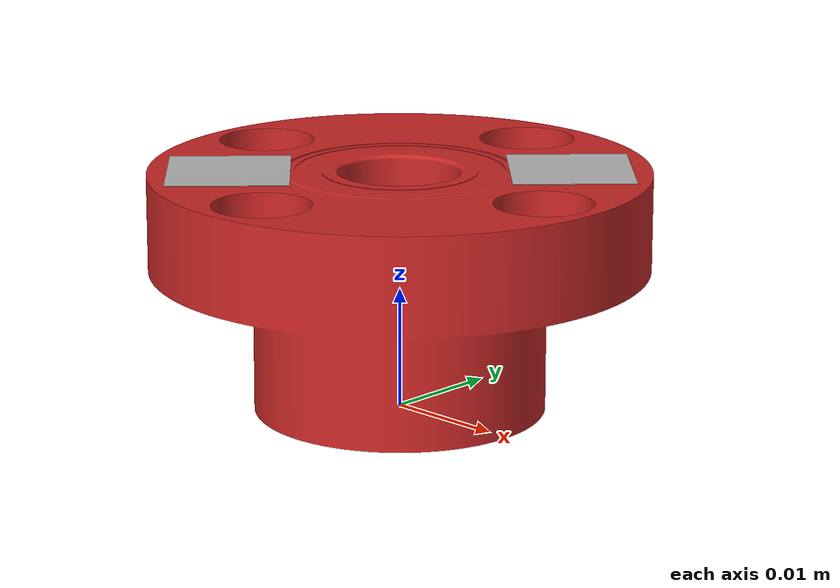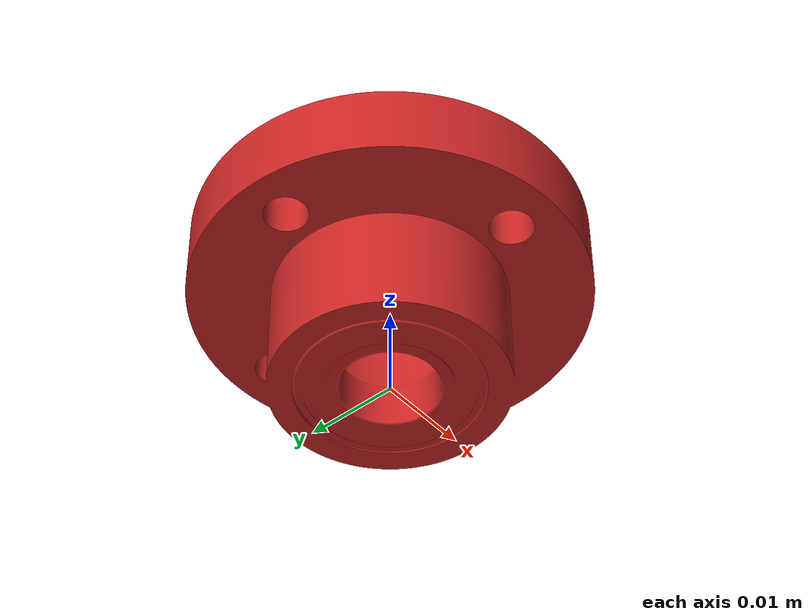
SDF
<?xml version="1.0"?>
<sdf version='1.7'>
  <model name='part_aruco'>

    <link name='part_link'>
      <inertial>
        <pose>0 0 0 0 -0 0</pose>
        <mass>1</mass>
        <inertia>
          <ixx>0.01</ixx>
          <ixy>0</ixy>
          <ixz>0</ixz>
          <iyy>0.01</iyy>
          <iyz>0</iyz>
          <izz>0.01</izz>
        </inertia>
      </inertial>
      <collision name='part_link_collision'>
        <pose>0 0 0 0 -0 0</pose>
        <geometry>
          <mesh>
            <uri>model://part_aruco/meshes/part.stl</uri>
          </mesh>
        </geometry>
      </collision>
      <visual name='box_link_visual'>
        <pose>0 0 0 0 -0 0</pose>
        <geometry>
          <mesh>
            <uri>model://part_aruco/meshes/part.stl</uri>
          </mesh>
        </geometry>
        <material>
          <script>
            <name>Gazebo/Red</name>
            <uri>file://media/materials/scripts/gazebo.material</uri>
          </script>
        </material>
      </visual>

      <!-- ArUco Marker 1 -->
      <visual name='aruco_marker_1_visual'>
        <pose>0.0098 0.0098 0.02 0 0 0.785</pose>
        <geometry>
          <box>
            <size>0.010 0.010 0.0001</size>
          </box>
        </geometry>
        <material>
          <script>
            <uri>model://box_with_aruco/materials/scripts</uri>
            <uri>model://box_with_aruco/materials/textures</uri>
            <name>Marker1</name>
          </script>
        </material>
      </visual>

      <!-- ArUco Marker 2 -->
      <visual name='aruco_marker_2_visual'>
        <pose>-0.0098 -0.0098 0.02 0 0 0.785</pose>
        <geometry>
          <box>
            <size>0.010 0.010 0.0001</size>
          </box>
        </geometry>
        <material>
          <script>
            <uri>model://box_with_aruco/materials/scripts</uri>
            <uri>model://box_with_aruco/materials/textures</uri>
            <name>Marker2</name>
          </script>
        </material>
      </visual>

    </link>

  </model>
</sdf>
